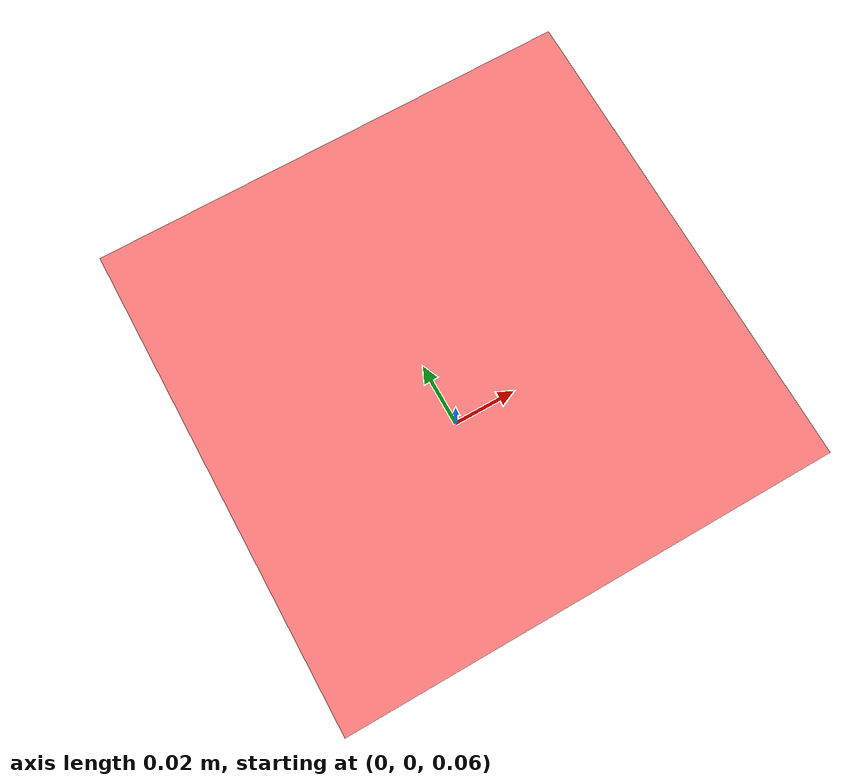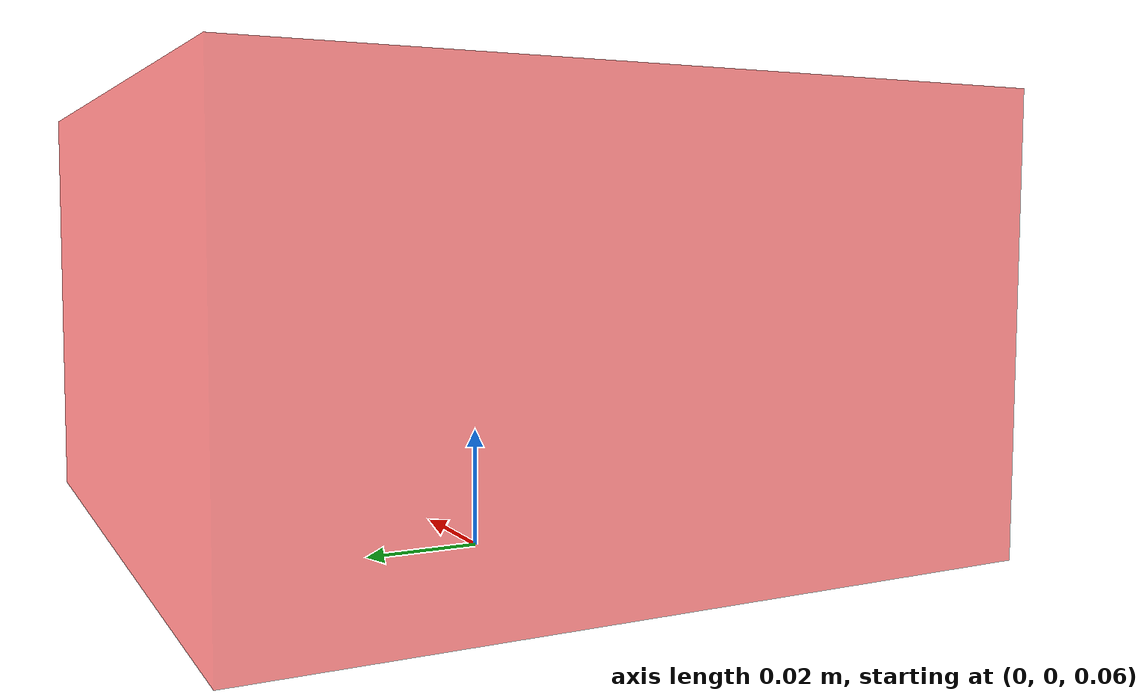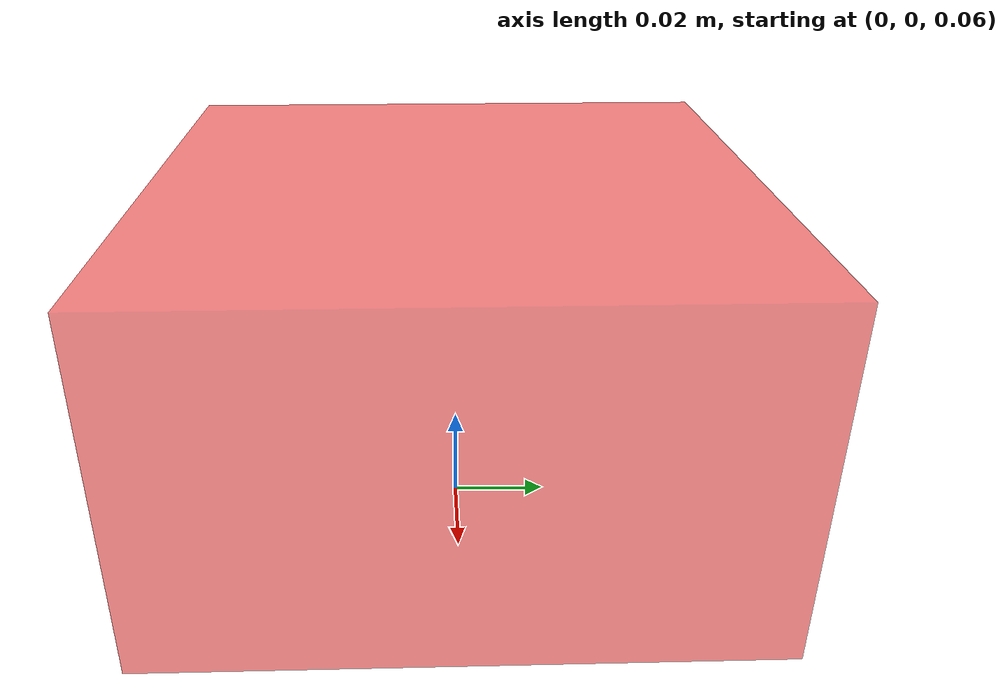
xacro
<robot name="test_robot">
  <link name="sensor_mount_link"/>
  <link name="velodyne_link"/>
    <link name="velodyne"/>
  <link name="front_camera/camera_link"/>
  <link name="front_camera/camera"/>
  <link name="front_camera/camera_optical_frame"/>
  <link name="back_camera/camera_link"/>
  <link name="back_camera/camera"/>
  <link name="back_camera/camera_optical_frame"/>
  <link name="left_camera/camera_link"/>
  <link name="left_camera/camera"/>
  <link name="left_camera/camera_optical_frame"/>
  <link name="right_camera/camera_link"/>
  <link name="right_camera/camera"/>
  <link name="right_camera/camera_optical_frame"/>

  <joint name="sensor_base_link_joint" type="fixed">
    <origin rpy="0 0 0" xyz="0 0 0.1"/>
    <parent link="sensor_mount_link"/>
    <child link="sensor_base_link"/>
  </joint>
  <link name="sensor_base_link">
    <visual>
      <geometry>
        <box size="0.12 0.12 0.07"/>
      </geometry>
      <origin xyz="0 0 0" rpy="0 0 0"/>
      <material name="red">
        <color rgba="1.0 0.0 0.0 0.5"/>
      </material>
    </visual>
  </link>

  <joint name="velodyne_link_joint" type="fixed">
    <origin rpy="0 0 0" xyz="0 0 0.1"/>
    <parent link="sensor_base_link"/>
    <child link="velodyne_link"/>
  </joint>
  <joint name="velodyne_joint" type="fixed">
    <origin rpy="0 0 0" xyz="0 0 0"/>
    <parent link="velodyne_link"/>
    <child link="velodyne"/>
  </joint>

  <joint name="front_camera/camera_link_joint" type="fixed">
    <origin rpy="0 0 0" xyz="0.06 0 0"/>
    <parent link="sensor_base_link"/>
    <child link="front_camera/camera_link"/>
  </joint>
  <joint name="front_camera/camera_joint" type="fixed">
    <origin rpy="0 0 0" xyz="0 0 0"/>
    <parent link="front_camera/camera_link"/>
    <child link="front_camera/camera"/>
  </joint>
  <joint name="front_camera/camera_optical_frame_joint" type="fixed">
    <origin rpy="-1.57079632679 0 -1.57079632679" xyz="0 0 0"/>
    <parent link="front_camera/camera"/>
    <child link="front_camera/camera_optical_frame"/>
  </joint>

  <joint name="back_camera/camera_link_joint" type="fixed">
    <origin rpy="0 0 3.1415926835897931" xyz="-0.06 0 0"/>
    <parent link="sensor_base_link"/>
    <child link="back_camera/camera_link"/>
  </joint>
  <joint name="back_camera/camera_joint" type="fixed">
    <origin rpy="0 0 0" xyz="0 0 0"/>
    <parent link="back_camera/camera_link"/>
    <child link="back_camera/camera"/>
  </joint>
  <joint name="back_camera/camera_optical_frame_joint" type="fixed">
    <origin rpy="-1.57079632679 0 -1.57079632679" xyz="0 0 0"/>
    <parent link="back_camera/camera"/>
    <child link="back_camera/camera_optical_frame"/>
  </joint>

  <joint name="left_camera/camera_link_joint" type="fixed">
    <origin rpy="0 0 1.57079632679" xyz="0 0.06 0"/>
    <parent link="sensor_base_link"/>
    <child link="left_camera/camera_link"/>
  </joint>
  <joint name="left_camera/camera_joint" type="fixed">
    <origin rpy="0 0 0" xyz="0 0 0"/>
    <parent link="left_camera/camera_link"/>
    <child link="left_camera/camera"/>
  </joint>
  <joint name="left_camera/camera_optical_frame_joint" type="fixed">
    <origin rpy="-1.57079632679 0 -1.57079632679" xyz="0 0 0"/>
    <parent link="left_camera/camera"/>
    <child link="left_camera/camera_optical_frame"/>
  </joint>

  <joint name="right_camera/camera_link_joint" type="fixed">
    <origin rpy="0 0 -1.57079632679" xyz="0 -0.06 0"/>
    <parent link="sensor_base_link"/>
    <child link="right_camera/camera_link"/>
  </joint>
  <joint name="right_camera/camera_joint" type="fixed">
    <origin rpy="0 0 0" xyz="0 0 0"/>
    <parent link="right_camera/camera_link"/>
    <child link="right_camera/camera"/>
  </joint>
  <joint name="right_camera/camera_optical_frame_joint" type="fixed">
    <origin rpy="-1.57079632679 0 -1.57079632679" xyz="0 0 0"/>
    <parent link="right_camera/camera"/>
    <child link="right_camera/camera_optical_frame"/>
  </joint>

</robot>
